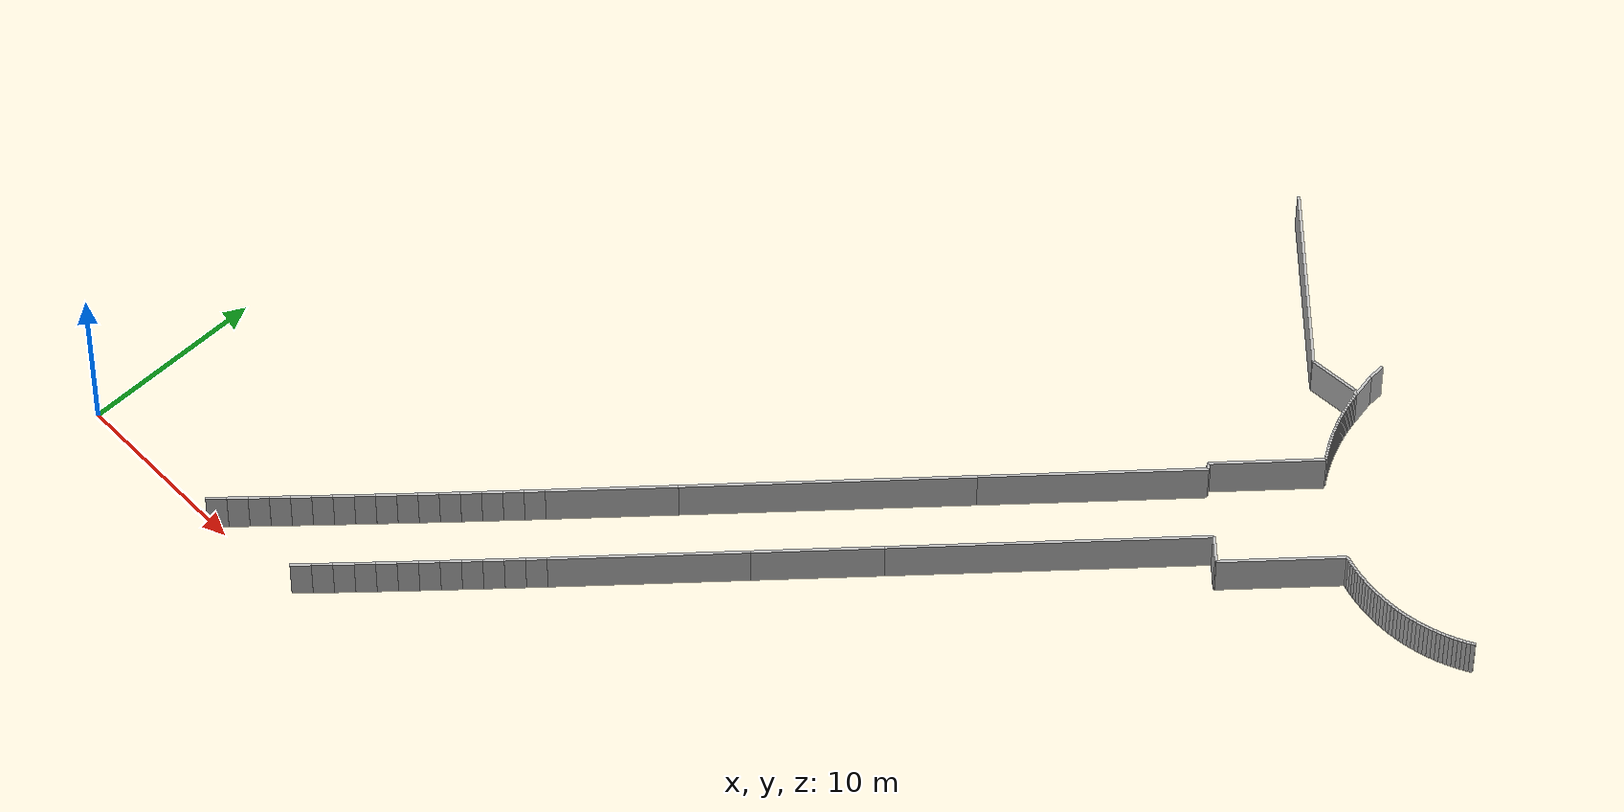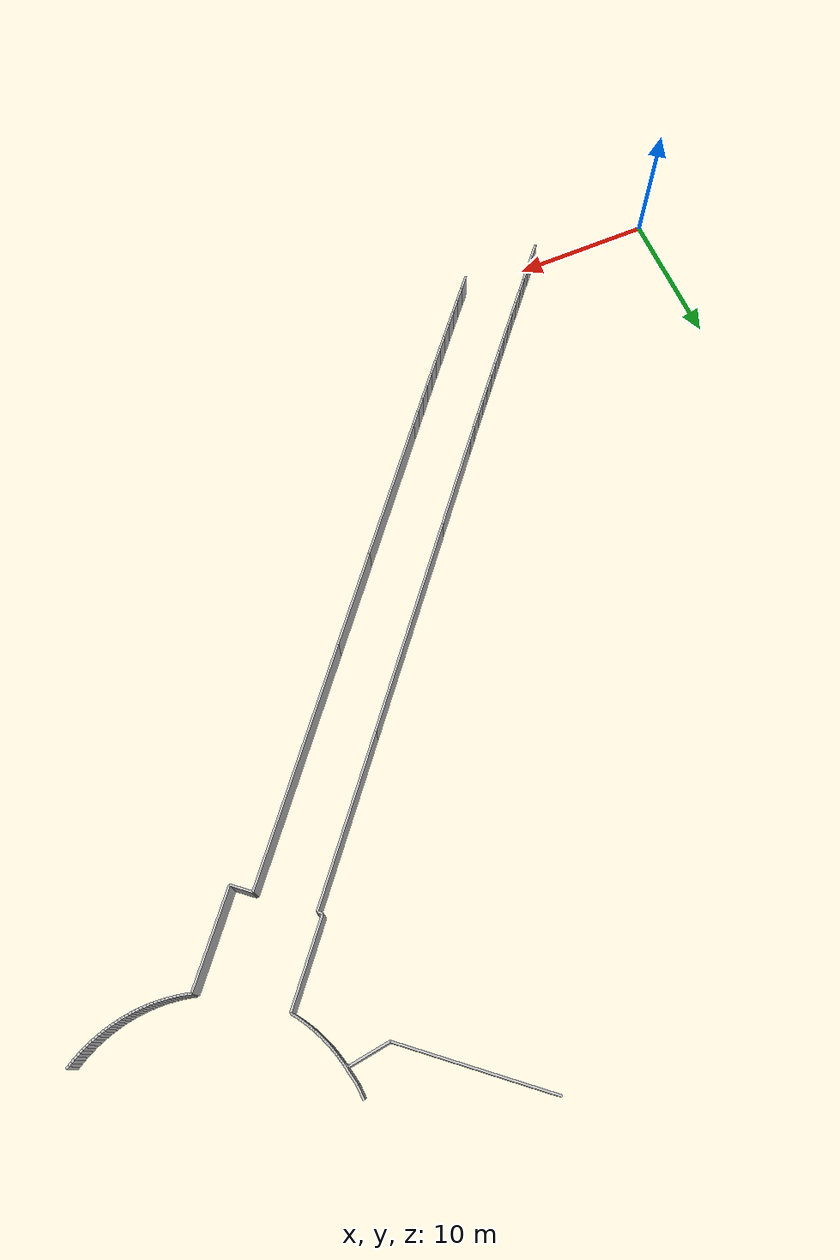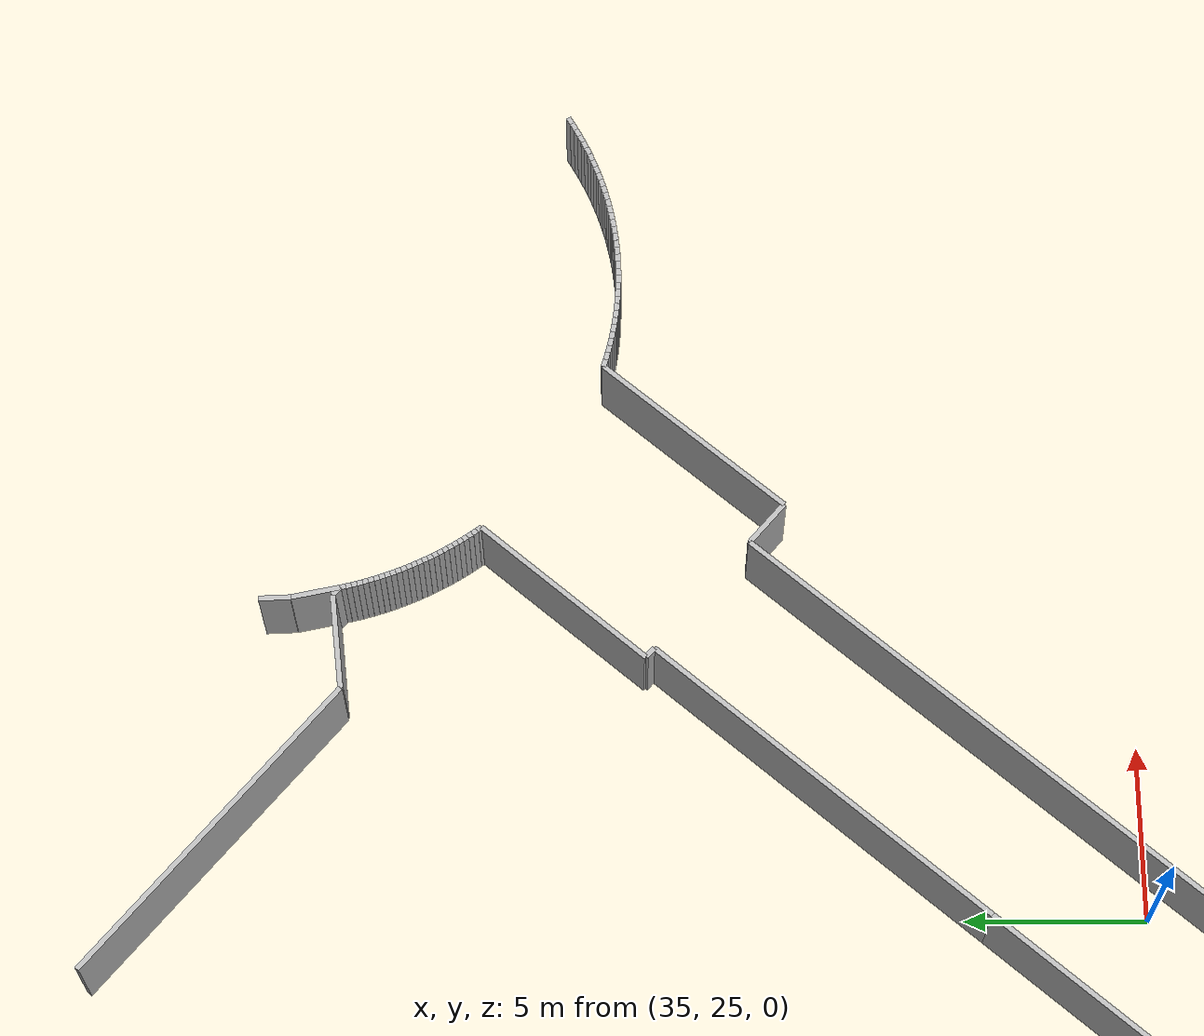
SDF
<sdf version="1.6">
 <model name="sps_2005">
  <static>1</static>
  <allow_auto_disable>0</allow_auto_disable>
  <link name="Wall139">
   <collision name="collision"><geometry><box><size>6.63014 0.15 2.5</size></box></geometry></collision>
   <visual name="visual">
    <geometry><box><size>6.63014 0.15 2.5</size></box></geometry>
    <transparency>0.0</transparency>
   </visual>
   <pose>48.5365 37.3412 1.25 0 -0 0.86781</pose>
  </link>
  <link name="Wall246">
   <collision name="collision"><geometry><box><size>10.2849 0.15 2.5</size></box></geometry></collision>
   <visual name="visual">
    <geometry><box><size>10.2849 0.15 2.5</size></box></geometry>
    <transparency>0.0</transparency>
   </visual>
   <pose>26.7513 13.97 1.25 0 -0 0.867762</pose>
  </link>
  <link name="Wall247">
   <collision name="collision"><geometry><box><size>6.79533 0.15 2.5</size></box></geometry></collision>
   <visual name="visual">
    <geometry><box><size>6.79533 0.15 2.5</size></box></geometry>
    <transparency>0.0</transparency>
   </visual>
   <pose>32.2727 20.4851 1.25 0 -0 0.867762</pose>
  </link>
  <link name="Wall248">
   <collision name="collision"><geometry><box><size>16.6612 0.15 2.5</size></box></geometry></collision>
   <visual name="visual">
    <geometry><box><size>16.6612 0.15 2.5</size></box></geometry>
    <transparency>0.0</transparency>
   </visual>
   <pose>39.8555 29.4324 1.25 0 -0 0.867762</pose>
  </link>
  <link name="Wall312">
   <collision name="collision"><geometry><box><size>11.7757 0.15 2.5</size></box></geometry></collision>
   <visual name="visual">
    <geometry><box><size>11.7757 0.15 2.5</size></box></geometry>
    <transparency>0.0</transparency>
   </visual>
   <pose>38.2761 33.9729 1.25 0 0 -2.27383</pose>
  </link>
  <link name="Wall313">
   <collision name="collision"><geometry><box><size>15.1897 0.15 2.5</size></box></geometry></collision>
   <visual name="visual">
    <geometry><box><size>15.1897 0.15 2.5</size></box></geometry>
    <transparency>0.0</transparency>
   </visual>
   <pose>29.5591 23.6871 1.25 0 0 -2.27383</pose>
  </link>
  <link name="Wall314">
   <collision name="collision"><geometry><box><size>6.76583 0.15 2.5</size></box></geometry></collision>
   <visual name="visual">
    <geometry><box><size>6.76583 0.15 2.5</size></box></geometry>
    <transparency>0.0</transparency>
   </visual>
   <pose>22.4616 15.3123 1.25 0 0 -2.27383</pose>
  </link>
  <link name="Wall377">
   <collision name="collision"><geometry><box><size>6.00041 0.15 2.5</size></box></geometry></collision>
   <visual name="visual">
    <geometry><box><size>6.00041 0.15 2.5</size></box></geometry>
    <transparency>0.0</transparency>
   </visual>
   <pose>43.7558 40.9795 1.25 0 0 -2.27373</pose>
  </link>
  <link name="Wall378">
   <collision name="collision"><geometry><box><size>1.50944 0.15 2.5</size></box></geometry></collision>
   <visual name="visual">
    <geometry><box><size>1.50944 0.15 2.5</size></box></geometry>
    <transparency>0.0</transparency>
   </visual>
   <pose>45.8174 35.2999 1.25 0 0 -0.702758</pose>
  </link>
  <link name="Wall470">
   <collision name="collision"><geometry><box><size>0.30032 0.15 2.5</size></box></geometry></collision>
   <visual name="visual">
    <geometry><box><size>0.30032 0.15 2.5</size></box></geometry>
    <transparency>0.0</transparency>
   </visual>
   <pose>43.7684 47.2602 1.25 0 0 -0.701374</pose>
  </link>
  <link name="Wall641">
   <collision name="collision"><geometry><box><size>0.349393 0.15 2.5</size></box></geometry></collision>
   <visual name="visual">
    <geometry><box><size>0.349393 0.15 2.5</size></box></geometry>
    <transparency>0.0</transparency>
   </visual>
   <pose>41.9495 38.5776 1.25 0 0 -0.70279</pose>
  </link>
  <link name="Wall1130">
   <collision name="collision"><geometry><box><size>0.884413 0.15 2.5</size></box></geometry></collision>
   <visual name="visual">
    <geometry><box><size>0.884413 0.15 2.5</size></box></geometry>
    <transparency>0.0</transparency>
   </visual>
   <pose>43.5749 48.9643 1.25 0 0 -1.52806</pose>
  </link>
  <link name="Wall1131">
   <collision name="collision"><geometry><box><size>1.38967 0.15 2.5</size></box></geometry></collision>
   <visual name="visual">
    <geometry><box><size>1.38967 0.15 2.5</size></box></geometry>
    <transparency>0.0</transparency>
   </visual>
   <pose>43.7385 47.8429 1.25 0 0 -1.36099</pose>
  </link>
  <link name="Wall1132">
   <collision name="collision"><geometry><box><size>0.30032 0.15 2.5</size></box></geometry></collision>
   <visual name="visual">
    <geometry><box><size>0.30032 0.15 2.5</size></box></geometry>
    <transparency>0.0</transparency>
   </visual>
   <pose>43.7685 47.2602 1.25 0 -0 2.44022</pose>
  </link>
  <link name="Wall1133">
   <collision name="collision"><geometry><box><size>2.75787 0.15 2.5</size></box></geometry></collision>
   <visual name="visual">
    <geometry><box><size>2.75787 0.15 2.5</size></box></geometry>
    <transparency>0.0</transparency>
   </visual>
   <pose>42.283 47.2083 1.25 0 0 -3.03347</pose>
  </link>
  <link name="Wall1134">
   <collision name="collision"><geometry><box><size>10.3999 0.15 2.5</size></box></geometry></collision>
   <visual name="visual">
    <geometry><box><size>10.3999 0.15 2.5</size></box></geometry>
    <transparency>0.0</transparency>
   </visual>
   <pose>36.9448 50.421 1.25 0 -0 2.43867</pose>
  </link>
  <link name="Wall3443">
   <collision name="collision"><geometry><box><size>1.07586 0.15 2.5</size></box></geometry></collision>
   <visual name="visual">
    <geometry><box><size>1.07586 0.15 2.5</size></box></geometry>
    <transparency>0.0</transparency>
   </visual>
   <pose>9.34685 0.132613 1.25 0 -0 0.847617</pose>
  </link>
  <link name="Wall3444">
   <collision name="collision"><geometry><box><size>1.07597 0.15 2.5</size></box></geometry></collision>
   <visual name="visual">
    <geometry><box><size>1.07597 0.15 2.5</size></box></geometry>
    <transparency>0.0</transparency>
   </visual>
   <pose>10.0585 0.939589 1.25 0 -0 0.848615</pose>
  </link>
  <link name="Wall3445">
   <collision name="collision"><geometry><box><size>1.07605 0.15 2.5</size></box></geometry></collision>
   <visual name="visual">
    <geometry><box><size>1.07605 0.15 2.5</size></box></geometry>
    <transparency>0.0</transparency>
   </visual>
   <pose>10.7693 1.74739 1.25 0 -0 0.849736</pose>
  </link>
  <link name="Wall3446">
   <collision name="collision"><geometry><box><size>1.07579 0.15 2.5</size></box></geometry></collision>
   <visual name="visual">
    <geometry><box><size>1.07579 0.15 2.5</size></box></geometry>
    <transparency>0.0</transparency>
   </visual>
   <pose>11.4791 2.55598 1.25 0 -0 0.851038</pose>
  </link>
  <link name="Wall3447">
   <collision name="collision"><geometry><box><size>1.07608 0.15 2.5</size></box></geometry></collision>
   <visual name="visual">
    <geometry><box><size>1.07608 0.15 2.5</size></box></geometry>
    <transparency>0.0</transparency>
   </visual>
   <pose>12.1879 3.36537 1.25 0 -0 0.851945</pose>
  </link>
  <link name="Wall3448">
   <collision name="collision"><geometry><box><size>1.07599 0.15 2.5</size></box></geometry></collision>
   <visual name="visual">
    <geometry><box><size>1.07599 0.15 2.5</size></box></geometry>
    <transparency>0.0</transparency>
   </visual>
   <pose>12.896 4.17558 1.25 0 -0 0.853156</pose>
  </link>
  <link name="Wall3449">
   <collision name="collision"><geometry><box><size>1.07595 0.15 2.5</size></box></geometry></collision>
   <visual name="visual">
    <geometry><box><size>1.07595 0.15 2.5</size></box></geometry>
    <transparency>0.0</transparency>
   </visual>
   <pose>13.6031 4.98659 1.25 0 -0 0.854325</pose>
  </link>
  <link name="Wall3450">
   <collision name="collision"><geometry><box><size>1.07604 0.15 2.5</size></box></geometry></collision>
   <visual name="visual">
    <geometry><box><size>1.07604 0.15 2.5</size></box></geometry>
    <transparency>0.0</transparency>
   </visual>
   <pose>14.3093 5.79848 1.25 0 -0 0.855605</pose>
  </link>
  <link name="Wall3451">
   <collision name="collision"><geometry><box><size>1.07599 0.15 2.5</size></box></geometry></collision>
   <visual name="visual">
    <geometry><box><size>1.07599 0.15 2.5</size></box></geometry>
    <transparency>0.0</transparency>
   </visual>
   <pose>15.0145 6.61119 1.25 0 -0 0.856614</pose>
  </link>
  <link name="Wall3452">
   <collision name="collision"><geometry><box><size>1.0762 0.15 2.5</size></box></geometry></collision>
   <visual name="visual">
    <geometry><box><size>1.0762 0.15 2.5</size></box></geometry>
    <transparency>0.0</transparency>
   </visual>
   <pose>15.7189 7.4247 1.25 0 -0 0.857686</pose>
  </link>
  <link name="Wall3453">
   <collision name="collision"><geometry><box><size>1.07569 0.15 2.5</size></box></geometry></collision>
   <visual name="visual">
    <geometry><box><size>1.07569 0.15 2.5</size></box></geometry>
    <transparency>0.0</transparency>
   </visual>
   <pose>16.4223 8.23888 1.25 0 -0 0.858847</pose>
  </link>
  <link name="Wall3454">
   <collision name="collision"><geometry><box><size>1.07613 0.15 2.5</size></box></geometry></collision>
   <visual name="visual">
    <geometry><box><size>1.07613 0.15 2.5</size></box></geometry>
    <transparency>0.0</transparency>
   </visual>
   <pose>17.1247 9.05388 1.25 0 -0 0.860103</pose>
  </link>
  <link name="Wall3455">
   <collision name="collision"><geometry><box><size>1.07592 0.15 2.5</size></box></geometry></collision>
   <visual name="visual">
    <geometry><box><size>1.07592 0.15 2.5</size></box></geometry>
    <transparency>0.0</transparency>
   </visual>
   <pose>17.8262 9.8698 1.25 0 -0 0.861204</pose>
  </link>
  <link name="Wall3456">
   <collision name="collision"><geometry><box><size>1.07608 0.15 2.5</size></box></geometry></collision>
   <visual name="visual">
    <geometry><box><size>1.07608 0.15 2.5</size></box></geometry>
    <transparency>0.0</transparency>
   </visual>
   <pose>18.5268 10.6864 1.25 0 -0 0.862078</pose>
  </link>
  <link name="Wall3457">
   <collision name="collision"><geometry><box><size>1.07604 0.15 2.5</size></box></geometry></collision>
   <visual name="visual">
    <geometry><box><size>1.07604 0.15 2.5</size></box></geometry>
    <transparency>0.0</transparency>
   </visual>
   <pose>19.2266 11.5039 1.25 0 -0 0.86369</pose>
  </link>
  <link name="Wall3458">
   <collision name="collision"><geometry><box><size>1.07602 0.15 2.5</size></box></geometry></collision>
   <visual name="visual">
    <geometry><box><size>1.07602 0.15 2.5</size></box></geometry>
    <transparency>0.0</transparency>
   </visual>
   <pose>19.9253 12.3222 1.25 0 -0 0.864496</pose>
  </link>
  <link name="Wall4249">
   <collision name="collision"><geometry><box><size>1.08076 0.15 2.5</size></box></geometry></collision>
   <visual name="visual">
    <geometry><box><size>1.08076 0.15 2.5</size></box></geometry>
    <transparency>0.0</transparency>
   </visual>
   <pose>15.3047 0.639388 1.25 0 -0 0.852057</pose>
  </link>
  <link name="Wall4250">
   <collision name="collision"><geometry><box><size>1.08067 0.15 2.5</size></box></geometry></collision>
   <visual name="visual">
    <geometry><box><size>1.08067 0.15 2.5</size></box></geometry>
    <transparency>0.0</transparency>
   </visual>
   <pose>16.0158 1.4532 1.25 0 -0 0.853263</pose>
  </link>
  <link name="Wall4251">
   <collision name="collision"><geometry><box><size>1.08075 0.15 2.5</size></box></geometry></collision>
   <visual name="visual">
    <geometry><box><size>1.08075 0.15 2.5</size></box></geometry>
    <transparency>0.0</transparency>
   </visual>
   <pose>16.7259 2.26781 1.25 0 -0 0.854299</pose>
  </link>
  <link name="Wall4252">
   <collision name="collision"><geometry><box><size>1.0807 0.15 2.5</size></box></geometry></collision>
   <visual name="visual">
    <geometry><box><size>1.0807 0.15 2.5</size></box></geometry>
    <transparency>0.0</transparency>
   </visual>
   <pose>17.4352 3.08321 1.25 0 -0 0.855462</pose>
  </link>
  <link name="Wall4253">
   <collision name="collision"><geometry><box><size>1.0808 0.15 2.5</size></box></geometry></collision>
   <visual name="visual">
    <geometry><box><size>1.0808 0.15 2.5</size></box></geometry>
    <transparency>0.0</transparency>
   </visual>
   <pose>18.1435 3.89949 1.25 0 -0 0.856737</pose>
  </link>
  <link name="Wall4254">
   <collision name="collision"><geometry><box><size>1.08075 0.15 2.5</size></box></geometry></collision>
   <visual name="visual">
    <geometry><box><size>1.08075 0.15 2.5</size></box></geometry>
    <transparency>0.0</transparency>
   </visual>
   <pose>18.8509 4.7166 1.25 0 -0 0.857741</pose>
  </link>
  <link name="Wall4255">
   <collision name="collision"><geometry><box><size>1.08084 0.15 2.5</size></box></geometry></collision>
   <visual name="visual">
    <geometry><box><size>1.08084 0.15 2.5</size></box></geometry>
    <transparency>0.0</transparency>
   </visual>
   <pose>19.5575 5.5345 1.25 0 -0 0.858936</pose>
  </link>
  <link name="Wall4256">
   <collision name="collision"><geometry><box><size>1.08045 0.15 2.5</size></box></geometry></collision>
   <visual name="visual">
    <geometry><box><size>1.08045 0.15 2.5</size></box></geometry>
    <transparency>0.0</transparency>
   </visual>
   <pose>20.263 6.35307 1.25 0 -0 0.859964</pose>
  </link>
  <link name="Wall4257">
   <collision name="collision"><geometry><box><size>1.0809 0.15 2.5</size></box></geometry></collision>
   <visual name="visual">
    <geometry><box><size>1.0809 0.15 2.5</size></box></geometry>
    <transparency>0.0</transparency>
   </visual>
   <pose>20.9676 7.17247 1.25 0 -0 0.861215</pose>
  </link>
  <link name="Wall4258">
   <collision name="collision"><geometry><box><size>1.08069 0.15 2.5</size></box></geometry></collision>
   <visual name="visual">
    <geometry><box><size>1.08069 0.15 2.5</size></box></geometry>
    <transparency>0.0</transparency>
   </visual>
   <pose>21.6713 7.99278 1.25 0 -0 0.862311</pose>
  </link>
  <link name="Wall4259">
   <collision name="collision"><geometry><box><size>1.08065 0.15 2.5</size></box></geometry></collision>
   <visual name="visual">
    <geometry><box><size>1.08065 0.15 2.5</size></box></geometry>
    <transparency>0.0</transparency>
   </visual>
   <pose>22.374 8.8138 1.25 0 -0 0.863475</pose>
  </link>
  <link name="Wall4260">
   <collision name="collision"><geometry><box><size>1.08088 0.15 2.5</size></box></geometry></collision>
   <visual name="visual">
    <geometry><box><size>1.08088 0.15 2.5</size></box></geometry>
    <transparency>0.0</transparency>
   </visual>
   <pose>23.0758 9.6357 1.25 0 -0 0.86462</pose>
  </link>
  <link name="Wall7240">
   <collision name="collision"><geometry><box><size>0.160273 0.15 2.5</size></box></geometry></collision>
   <visual name="visual">
    <geometry><box><size>0.160273 0.15 2.5</size></box></geometry>
    <transparency>0.0</transparency>
   </visual>
   <pose>43.9011 47.0852 1.25 0 0 -1.34457</pose>
  </link>
  <link name="Wall7241">
   <collision name="collision"><geometry><box><size>0.160304 0.15 2.5</size></box></geometry></collision>
   <visual name="visual">
    <geometry><box><size>0.160304 0.15 2.5</size></box></geometry>
    <transparency>0.0</transparency>
   </visual>
   <pose>43.9383 46.9293 1.25 0 0 -1.32739</pose>
  </link>
  <link name="Wall7242">
   <collision name="collision"><geometry><box><size>0.160363 0.15 2.5</size></box></geometry></collision>
   <visual name="visual">
    <geometry><box><size>0.160363 0.15 2.5</size></box></geometry>
    <transparency>0.0</transparency>
   </visual>
   <pose>43.9782 46.774 1.25 0 0 -1.31216</pose>
  </link>
  <link name="Wall7243">
   <collision name="collision"><geometry><box><size>0.16045 0.15 2.5</size></box></geometry></collision>
   <visual name="visual">
    <geometry><box><size>0.16045 0.15 2.5</size></box></geometry>
    <transparency>0.0</transparency>
   </visual>
   <pose>44.0205 46.6193 1.25 0 0 -1.29574</pose>
  </link>
  <link name="Wall7244">
   <collision name="collision"><geometry><box><size>0.160312 0.15 2.5</size></box></geometry></collision>
   <visual name="visual">
    <geometry><box><size>0.160312 0.15 2.5</size></box></geometry>
    <transparency>0.0</transparency>
   </visual>
   <pose>44.0653 46.4653 1.25 0 0 -1.27963</pose>
  </link>
  <link name="Wall7245">
   <collision name="collision"><geometry><box><size>0.160543 0.15 2.5</size></box></geometry></collision>
   <visual name="visual">
    <geometry><box><size>0.160543 0.15 2.5</size></box></geometry>
    <transparency>0.0</transparency>
   </visual>
   <pose>44.1126 46.312 1.25 0 0 -1.26335</pose>
  </link>
  <link name="Wall7246">
   <collision name="collision"><geometry><box><size>0.160237 0.15 2.5</size></box></geometry></collision>
   <visual name="visual">
    <geometry><box><size>0.160237 0.15 2.5</size></box></geometry>
    <transparency>0.0</transparency>
   </visual>
   <pose>44.1623 46.1595 1.25 0 0 -1.24832</pose>
  </link>
  <link name="Wall7247">
   <collision name="collision"><geometry><box><size>0.160397 0.15 2.5</size></box></geometry></collision>
   <visual name="visual">
    <geometry><box><size>0.160397 0.15 2.5</size></box></geometry>
    <transparency>0.0</transparency>
   </visual>
   <pose>44.2143 46.0079 1.25 0 0 -1.23136</pose>
  </link>
  <link name="Wall7248">
   <collision name="collision"><geometry><box><size>0.160175 0.15 2.5</size></box></geometry></collision>
   <visual name="visual">
    <geometry><box><size>0.160175 0.15 2.5</size></box></geometry>
    <transparency>0.0</transparency>
   </visual>
   <pose>44.2689 45.8572 1.25 0 0 -1.21506</pose>
  </link>
  <link name="Wall7249">
   <collision name="collision"><geometry><box><size>0.160359 0.15 2.5</size></box></geometry></collision>
   <visual name="visual">
    <geometry><box><size>0.160359 0.15 2.5</size></box></geometry>
    <transparency>0.0</transparency>
   </visual>
   <pose>44.3259 45.7074 1.25 0 0 -1.1992</pose>
  </link>
  <link name="Wall7250">
   <collision name="collision"><geometry><box><size>0.160334 0.15 2.5</size></box></geometry></collision>
   <visual name="visual">
    <geometry><box><size>0.160334 0.15 2.5</size></box></geometry>
    <transparency>0.0</transparency>
   </visual>
   <pose>44.3854 45.5585 1.25 0 0 -1.18315</pose>
  </link>
  <link name="Wall7251">
   <collision name="collision"><geometry><box><size>0.160391 0.15 2.5</size></box></geometry></collision>
   <visual name="visual">
    <geometry><box><size>0.160391 0.15 2.5</size></box></geometry>
    <transparency>0.0</transparency>
   </visual>
   <pose>44.4471 45.4105 1.25 0 0 -1.16845</pose>
  </link>
  <link name="Wall7252">
   <collision name="collision"><geometry><box><size>0.160297 0.15 2.5</size></box></geometry></collision>
   <visual name="visual">
    <geometry><box><size>0.160297 0.15 2.5</size></box></geometry>
    <transparency>0.0</transparency>
   </visual>
   <pose>44.5112 45.2635 1.25 0 0 -1.15075</pose>
  </link>
  <link name="Wall7253">
   <collision name="collision"><geometry><box><size>0.1604 0.15 2.5</size></box></geometry></collision>
   <visual name="visual">
    <geometry><box><size>0.1604 0.15 2.5</size></box></geometry>
    <transparency>0.0</transparency>
   </visual>
   <pose>44.5777 45.1176 1.25 0 0 -1.13557</pose>
  </link>
  <link name="Wall7254">
   <collision name="collision"><geometry><box><size>0.160264 0.15 2.5</size></box></geometry></collision>
   <visual name="visual">
    <geometry><box><size>0.160264 0.15 2.5</size></box></geometry>
    <transparency>0.0</transparency>
   </visual>
   <pose>44.6465 44.9728 1.25 0 0 -1.11873</pose>
  </link>
  <link name="Wall7255">
   <collision name="collision"><geometry><box><size>0.160363 0.15 2.5</size></box></geometry></collision>
   <visual name="visual">
    <geometry><box><size>0.160363 0.15 2.5</size></box></geometry>
    <transparency>0.0</transparency>
   </visual>
   <pose>44.7176 44.8291 1.25 0 0 -1.10374</pose>
  </link>
  <link name="Wall7256">
   <collision name="collision"><geometry><box><size>0.160422 0.15 2.5</size></box></geometry></collision>
   <visual name="visual">
    <geometry><box><size>0.160422 0.15 2.5</size></box></geometry>
    <transparency>0.0</transparency>
   </visual>
   <pose>44.791 44.6865 1.25 0 0 -1.08724</pose>
  </link>
  <link name="Wall7257">
   <collision name="collision"><geometry><box><size>0.16047 0.15 2.5</size></box></geometry></collision>
   <visual name="visual">
    <geometry><box><size>0.16047 0.15 2.5</size></box></geometry>
    <transparency>0.0</transparency>
   </visual>
   <pose>44.8668 44.5451 1.25 0 0 -1.07057</pose>
  </link>
  <link name="Wall7258">
   <collision name="collision"><geometry><box><size>0.160253 0.15 2.5</size></box></geometry></collision>
   <visual name="visual">
    <geometry><box><size>0.160253 0.15 2.5</size></box></geometry>
    <transparency>0.0</transparency>
   </visual>
   <pose>44.9448 44.405 1.25 0 0 -1.055</pose>
  </link>
  <link name="Wall7259">
   <collision name="collision"><geometry><box><size>0.160263 0.15 2.5</size></box></geometry></collision>
   <visual name="visual">
    <geometry><box><size>0.160263 0.15 2.5</size></box></geometry>
    <transparency>0.0</transparency>
   </visual>
   <pose>45.0249 44.2662 1.25 0 0 -1.03965</pose>
  </link>
  <link name="Wall7260">
   <collision name="collision"><geometry><box><size>0.160523 0.15 2.5</size></box></geometry></collision>
   <visual name="visual">
    <geometry><box><size>0.160523 0.15 2.5</size></box></geometry>
    <transparency>0.0</transparency>
   </visual>
   <pose>45.1073 44.1286 1.25 0 0 -1.02288</pose>
  </link>
  <link name="Wall7261">
   <collision name="collision"><geometry><box><size>0.160153 0.15 2.5</size></box></geometry></collision>
   <visual name="visual">
    <geometry><box><size>0.160153 0.15 2.5</size></box></geometry>
    <transparency>0.0</transparency>
   </visual>
   <pose>45.1919 43.9924 1.25 0 0 -1.00711</pose>
  </link>
  <link name="Wall7262">
   <collision name="collision"><geometry><box><size>0.1605 0.15 2.5</size></box></geometry></collision>
   <visual name="visual">
    <geometry><box><size>0.1605 0.15 2.5</size></box></geometry>
    <transparency>0.0</transparency>
   </visual>
   <pose>45.2786 43.8576 1.25 0 0 -0.990388</pose>
  </link>
  <link name="Wall7263">
   <collision name="collision"><geometry><box><size>0.160312 0.15 2.5</size></box></geometry></collision>
   <visual name="visual">
    <geometry><box><size>0.160312 0.15 2.5</size></box></geometry>
    <transparency>0.0</transparency>
   </visual>
   <pose>45.3675 43.7241 1.25 0 0 -0.976352</pose>
  </link>
  <link name="Wall7264">
   <collision name="collision"><geometry><box><size>0.160342 0.15 2.5</size></box></geometry></collision>
   <visual name="visual">
    <geometry><box><size>0.160342 0.15 2.5</size></box></geometry>
    <transparency>0.0</transparency>
   </visual>
   <pose>45.4585 43.5921 1.25 0 0 -0.957981</pose>
  </link>
  <link name="Wall7265">
   <collision name="collision"><geometry><box><size>0.160384 0.15 2.5</size></box></geometry></collision>
   <visual name="visual">
    <geometry><box><size>0.160384 0.15 2.5</size></box></geometry>
    <transparency>0.0</transparency>
   </visual>
   <pose>45.5517 43.4616 1.25 0 0 -0.943203</pose>
  </link>
  <link name="Wall7266">
   <collision name="collision"><geometry><box><size>0.160401 0.15 2.5</size></box></geometry></collision>
   <visual name="visual">
    <geometry><box><size>0.160401 0.15 2.5</size></box></geometry>
    <transparency>0.0</transparency>
   </visual>
   <pose>45.6471 43.3326 1.25 0 0 -0.925773</pose>
  </link>
  <link name="Wall7994">
   <collision name="collision"><geometry><box><size>0.227303 0.15 2.5</size></box></geometry></collision>
   <visual name="visual">
    <geometry><box><size>0.227303 0.15 2.5</size></box></geometry>
    <transparency>0.0</transparency>
   </visual>
   <pose>50.7888 39.8388 1.25 0 0 -0.281066</pose>
  </link>
  <link name="Wall7995">
   <collision name="collision"><geometry><box><size>0.227543 0.15 2.5</size></box></geometry></collision>
   <visual name="visual">
    <geometry><box><size>0.227543 0.15 2.5</size></box></geometry>
    <transparency>0.0</transparency>
   </visual>
   <pose>51.008 39.7783 1.25 0 0 -0.257665</pose>
  </link>
  <link name="Wall7996">
   <collision name="collision"><geometry><box><size>0.227405 0.15 2.5</size></box></geometry></collision>
   <visual name="visual">
    <geometry><box><size>0.227405 0.15 2.5</size></box></geometry>
    <transparency>0.0</transparency>
   </visual>
   <pose>51.2287 39.7229 1.25 0 0 -0.234303</pose>
  </link>
  <link name="Wall7997">
   <collision name="collision"><geometry><box><size>0.227527 0.15 2.5</size></box></geometry></collision>
   <visual name="visual">
    <geometry><box><size>0.227527 0.15 2.5</size></box></geometry>
    <transparency>0.0</transparency>
   </visual>
   <pose>51.4505 39.6725 1.25 0 0 -0.212442</pose>
  </link>
  <link name="Wall7998">
   <collision name="collision"><geometry><box><size>0.227281 0.15 2.5</size></box></geometry></collision>
   <visual name="visual">
    <geometry><box><size>0.227281 0.15 2.5</size></box></geometry>
    <transparency>0.0</transparency>
   </visual>
   <pose>51.6733 39.6271 1.25 0 0 -0.189654</pose>
  </link>
  <link name="Wall7999">
   <collision name="collision"><geometry><box><size>0.227494 0.15 2.5</size></box></geometry></collision>
   <visual name="visual">
    <geometry><box><size>0.227494 0.15 2.5</size></box></geometry>
    <transparency>0.0</transparency>
   </visual>
   <pose>51.8971 39.5869 1.25 0 0 -0.166031</pose>
  </link>
  <link name="Wall8000">
   <collision name="collision"><geometry><box><size>0.227385 0.15 2.5</size></box></geometry></collision>
   <visual name="visual">
    <geometry><box><size>0.227385 0.15 2.5</size></box></geometry>
    <transparency>0.0</transparency>
   </visual>
   <pose>52.1218 39.5518 1.25 0 0 -0.143833</pose>
  </link>
  <link name="Wall8001">
   <collision name="collision"><geometry><box><size>0.227448 0.15 2.5</size></box></geometry></collision>
   <visual name="visual">
    <geometry><box><size>0.227448 0.15 2.5</size></box></geometry>
    <transparency>0.0</transparency>
   </visual>
   <pose>52.3472 39.5217 1.25 0 0 -0.121592</pose>
  </link>
  <link name="Wall8002">
   <collision name="collision"><geometry><box><size>0.227528 0.15 2.5</size></box></geometry></collision>
   <visual name="visual">
    <geometry><box><size>0.227528 0.15 2.5</size></box></geometry>
    <transparency>0.0</transparency>
   </visual>
   <pose>52.5733 39.4968 1.25 0 0 -0.0978002</pose>
  </link>
  <link name="Wall8003">
   <collision name="collision"><geometry><box><size>0.227412 0.15 2.5</size></box></geometry></collision>
   <visual name="visual">
    <geometry><box><size>0.227412 0.15 2.5</size></box></geometry>
    <transparency>0.0</transparency>
   </visual>
   <pose>52.7999 39.477 1.25 0 0 -0.076566</pose>
  </link>
  <link name="Wall8004">
   <collision name="collision"><geometry><box><size>0.227549 0.15 2.5</size></box></geometry></collision>
   <visual name="visual">
    <geometry><box><size>0.227549 0.15 2.5</size></box></geometry>
    <transparency>0.0</transparency>
   </visual>
   <pose>53.0268 39.4623 1.25 0 0 -0.0525972</pose>
  </link>
  <link name="Wall8005">
   <collision name="collision"><geometry><box><size>0.227276 0.15 2.5</size></box></geometry></collision>
   <visual name="visual">
    <geometry><box><size>0.227276 0.15 2.5</size></box></geometry>
    <transparency>0.0</transparency>
   </visual>
   <pose>53.2541 39.4529 1.25 0 0 -0.0300823</pose>
  </link>
  <link name="Wall8006">
   <collision name="collision"><geometry><box><size>0.227607 0.15 2.5</size></box></geometry></collision>
   <visual name="visual">
    <geometry><box><size>0.227607 0.15 2.5</size></box></geometry>
    <transparency>0.0</transparency>
   </visual>
   <pose>53.4814 39.4486 1.25 0 0 -0.00777672</pose>
  </link>
  <link name="Wall8007">
   <collision name="collision"><geometry><box><size>0.227442 0.15 2.5</size></box></geometry></collision>
   <visual name="visual">
    <geometry><box><size>0.227442 0.15 2.5</size></box></geometry>
    <transparency>0.0</transparency>
   </visual>
   <pose>53.7089 39.4494 1.25 0 -0 0.0147601</pose>
  </link>
  <link name="Wall8008">
   <collision name="collision"><geometry><box><size>0.227345 0.15 2.5</size></box></geometry></collision>
   <visual name="visual">
    <geometry><box><size>0.227345 0.15 2.5</size></box></geometry>
    <transparency>0.0</transparency>
   </visual>
   <pose>53.9362 39.4555 1.25 0 -0 0.0389379</pose>
  </link>
  <link name="Wall8009">
   <collision name="collision"><geometry><box><size>0.227638 0.15 2.5</size></box></geometry></collision>
   <visual name="visual">
    <geometry><box><size>0.227638 0.15 2.5</size></box></geometry>
    <transparency>0.0</transparency>
   </visual>
   <pose>54.1634 39.4667 1.25 0 -0 0.0595588</pose>
  </link>
  <link name="Wall8010">
   <collision name="collision"><geometry><box><size>0.227422 0.15 2.5</size></box></geometry></collision>
   <visual name="visual">
    <geometry><box><size>0.227422 0.15 2.5</size></box></geometry>
    <transparency>0.0</transparency>
   </visual>
   <pose>54.3904 39.483 1.25 0 -0 0.0838321</pose>
  </link>
  <link name="Wall8011">
   <collision name="collision"><geometry><box><size>0.227484 0.15 2.5</size></box></geometry></collision>
   <visual name="visual">
    <geometry><box><size>0.227484 0.15 2.5</size></box></geometry>
    <transparency>0.0</transparency>
   </visual>
   <pose>54.6168 39.5046 1.25 0 -0 0.10645</pose>
  </link>
  <link name="Wall8012">
   <collision name="collision"><geometry><box><size>0.227473 0.15 2.5</size></box></geometry></collision>
   <visual name="visual">
    <geometry><box><size>0.227473 0.15 2.5</size></box></geometry>
    <transparency>0.0</transparency>
   </visual>
   <pose>54.8427 39.5313 1.25 0 -0 0.128881</pose>
  </link>
  <link name="Wall8013">
   <collision name="collision"><geometry><box><size>0.227404 0.15 2.5</size></box></geometry></collision>
   <visual name="visual">
    <geometry><box><size>0.227404 0.15 2.5</size></box></geometry>
    <transparency>0.0</transparency>
   </visual>
   <pose>55.0679 39.5631 1.25 0 -0 0.15169</pose>
  </link>
  <link name="Wall8014">
   <collision name="collision"><geometry><box><size>0.227443 0.15 2.5</size></box></geometry></collision>
   <visual name="visual">
    <geometry><box><size>0.227443 0.15 2.5</size></box></geometry>
    <transparency>0.0</transparency>
   </visual>
   <pose>55.2923 39.6 1.25 0 -0 0.174237</pose>
  </link>
  <link name="Wall8015">
   <collision name="collision"><geometry><box><size>0.227442 0.15 2.5</size></box></geometry></collision>
   <visual name="visual">
    <geometry><box><size>0.227442 0.15 2.5</size></box></geometry>
    <transparency>0.0</transparency>
   </visual>
   <pose>55.5158 39.642 1.25 0 -0 0.197448</pose>
  </link>
  <link name="Wall8016">
   <collision name="collision"><geometry><box><size>0.22745 0.15 2.5</size></box></geometry></collision>
   <visual name="visual">
    <geometry><box><size>0.22745 0.15 2.5</size></box></geometry>
    <transparency>0.0</transparency>
   </visual>
   <pose>55.7383 39.6891 1.25 0 -0 0.219659</pose>
  </link>
  <link name="Wall8017">
   <collision name="collision"><geometry><box><size>0.227422 0.15 2.5</size></box></geometry></collision>
   <visual name="visual">
    <geometry><box><size>0.227422 0.15 2.5</size></box></geometry>
    <transparency>0.0</transparency>
   </visual>
   <pose>55.9596 39.7412 1.25 0 -0 0.24257</pose>
  </link>
  <link name="Wall8018">
   <collision name="collision"><geometry><box><size>0.227364 0.15 2.5</size></box></geometry></collision>
   <visual name="visual">
    <geometry><box><size>0.227364 0.15 2.5</size></box></geometry>
    <transparency>0.0</transparency>
   </visual>
   <pose>56.1797 39.7983 1.25 0 -0 0.265098</pose>
  </link>
  <link name="Wall8019">
   <collision name="collision"><geometry><box><size>0.227573 0.15 2.5</size></box></geometry></collision>
   <visual name="visual">
    <geometry><box><size>0.227573 0.15 2.5</size></box></geometry>
    <transparency>0.0</transparency>
   </visual>
   <pose>56.3986 39.8604 1.25 0 -0 0.287989</pose>
  </link>
  <link name="Wall8020">
   <collision name="collision"><geometry><box><size>0.22734 0.15 2.5</size></box></geometry></collision>
   <visual name="visual">
    <geometry><box><size>0.22734 0.15 2.5</size></box></geometry>
    <transparency>0.0</transparency>
   </visual>
   <pose>56.6159 39.9275 1.25 0 -0 0.311053</pose>
  </link>
  <link name="Wall8021">
   <collision name="collision"><geometry><box><size>0.227537 0.15 2.5</size></box></geometry></collision>
   <visual name="visual">
    <geometry><box><size>0.227537 0.15 2.5</size></box></geometry>
    <transparency>0.0</transparency>
   </visual>
   <pose>56.8316 39.9996 1.25 0 -0 0.333966</pose>
  </link>
  <link name="Wall8022">
   <collision name="collision"><geometry><box><size>0.22744 0.15 2.5</size></box></geometry></collision>
   <visual name="visual">
    <geometry><box><size>0.22744 0.15 2.5</size></box></geometry>
    <transparency>0.0</transparency>
   </visual>
   <pose>57.0456 40.0765 1.25 0 -0 0.355787</pose>
  </link>
  <link name="Wall8023">
   <collision name="collision"><geometry><box><size>0.227336 0.15 2.5</size></box></geometry></collision>
   <visual name="visual">
    <geometry><box><size>0.227336 0.15 2.5</size></box></geometry>
    <transparency>0.0</transparency>
   </visual>
   <pose>57.2578 40.1582 1.25 0 -0 0.37926</pose>
  </link>
  <link name="Wall8024">
   <collision name="collision"><geometry><box><size>0.227559 0.15 2.5</size></box></geometry></collision>
   <visual name="visual">
    <geometry><box><size>0.227559 0.15 2.5</size></box></geometry>
    <transparency>0.0</transparency>
   </visual>
   <pose>57.4681 40.2448 1.25 0 -0 0.402074</pose>
  </link>
  <link name="Wall8025">
   <collision name="collision"><geometry><box><size>0.22736 0.15 2.5</size></box></geometry></collision>
   <visual name="visual">
    <geometry><box><size>0.22736 0.15 2.5</size></box></geometry>
    <transparency>0.0</transparency>
   </visual>
   <pose>57.6764 40.3361 1.25 0 -0 0.424139</pose>
  </link>
  <link name="Wall8026">
   <collision name="collision"><geometry><box><size>0.227569 0.15 2.5</size></box></geometry></collision>
   <visual name="visual">
    <geometry><box><size>0.227569 0.15 2.5</size></box></geometry>
    <transparency>0.0</transparency>
   </visual>
   <pose>57.8827 40.4321 1.25 0 -0 0.447094</pose>
  </link>
  <link name="Wall8027">
   <collision name="collision"><geometry><box><size>0.227487 0.15 2.5</size></box></geometry></collision>
   <visual name="visual">
    <geometry><box><size>0.227487 0.15 2.5</size></box></geometry>
    <transparency>0.0</transparency>
   </visual>
   <pose>58.0867 40.5328 1.25 0 -0 0.470007</pose>
  </link>
  <link name="Wall8028">
   <collision name="collision"><geometry><box><size>0.227328 0.15 2.5</size></box></geometry></collision>
   <visual name="visual">
    <geometry><box><size>0.227328 0.15 2.5</size></box></geometry>
    <transparency>0.0</transparency>
   </visual>
   <pose>58.2883 40.638 1.25 0 -0 0.491868</pose>
  </link>
  <link name="Wall8029">
   <collision name="collision"><geometry><box><size>0.2276 0.15 2.5</size></box></geometry></collision>
   <visual name="visual">
    <geometry><box><size>0.2276 0.15 2.5</size></box></geometry>
    <transparency>0.0</transparency>
   </visual>
   <pose>58.4874 40.7478 1.25 0 -0 0.51572</pose>
  </link>
  <link name="Wall8030">
   <collision name="collision"><geometry><box><size>0.227353 0.15 2.5</size></box></geometry></collision>
   <visual name="visual">
    <geometry><box><size>0.227353 0.15 2.5</size></box></geometry>
    <transparency>0.0</transparency>
   </visual>
   <pose>58.684 40.8622 1.25 0 -0 0.538394</pose>
  </link>
 </model>
</sdf>
